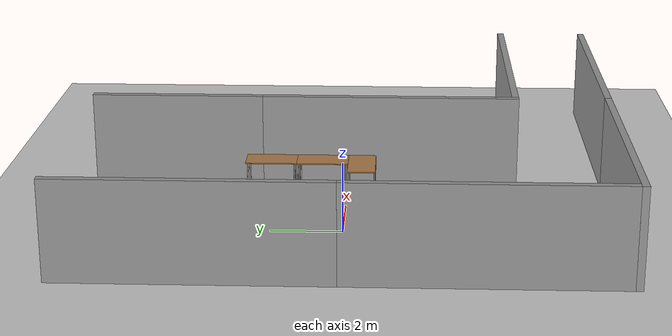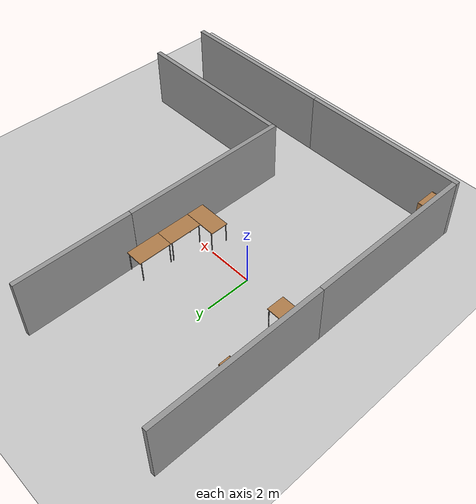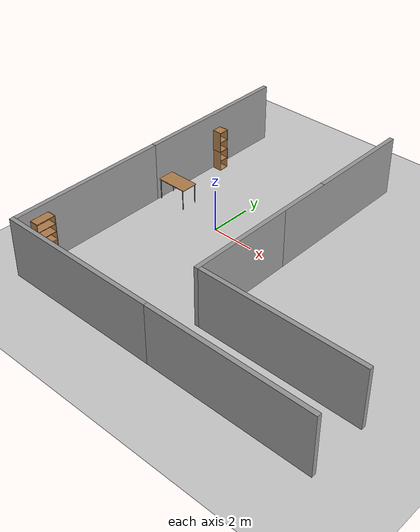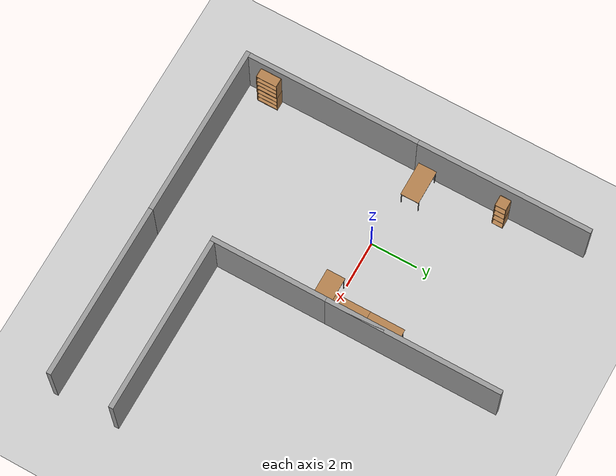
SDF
<sdf version="1.6">
 <world name="default">
  <model name="ground_plane">
   <static>1</static>
   <link name="link">
    <collision name="collision">
     <geometry><plane><normal>0 0 1</normal><size>100 100</size></plane></geometry>
     <surface>
      <contact><collide_bitmask>65535</collide_bitmask></contact>
      <friction><ode><mu>100</mu><mu2>50</mu2></ode></friction>
     </surface>
    </collision>
    <visual name="visual">
     <cast_shadows>0</cast_shadows>
     <geometry><plane><normal>0 0 1</normal><size>100 100</size></plane></geometry>
     <material>
      <script><uri>file://media/materials/scripts/gazebo.material</uri><name>Gazebo/Grey</name></script>
     </material>
    </visual>
   </link>
  </model>
  <model name="grey_wall">
   <static>1</static>
   <link name="link">
    <pose>0 0 1.4 0 -0 0</pose>
    <collision name="collision"><geometry><box><size>7.5 0.2 2.8</size></box></geometry></collision>
    <visual name="visual">
     <cast_shadows>0</cast_shadows>
     <geometry><box><size>7.5 0.2 2.8</size></box></geometry>
     <material>
      <script>
       <uri>model://grey_wall/materials/scripts</uri>
       <uri>model://grey_wall/materials/textures</uri>
       <name>vrc/grey_wall</name>
      </script>
     </material>
    </visual>
   </link>
   <pose>0 -7.6 0 0 -0 0</pose>
  </model>
  <model name="grey_wall_clone">
   <static>1</static>
   <link name="link">
    <pose>0 0 1.4 0 -0 0</pose>
    <collision name="collision"><geometry><box><size>7.5 0.2 2.8</size></box></geometry></collision>
    <visual name="visual">
     <cast_shadows>0</cast_shadows>
     <geometry><box><size>7.5 0.2 2.8</size></box></geometry>
     <material>
      <script>
       <uri>model://grey_wall/materials/scripts</uri>
       <uri>model://grey_wall/materials/textures</uri>
       <name>vrc/grey_wall</name>
      </script>
     </material>
    </visual>
   </link>
   <pose>-3.64848 -3.75 0 0 -0 1.5708</pose>
  </model>
  <model name="grey_wall_clone_0">
   <static>1</static>
   <link name="link">
    <pose>0 0 1.4 0 -0 0</pose>
    <collision name="collision"><geometry><box><size>7.5 0.2 2.8</size></box></geometry></collision>
    <visual name="visual">
     <cast_shadows>0</cast_shadows>
     <geometry><box><size>7.5 0.2 2.8</size></box></geometry>
     <material>
      <script>
       <uri>model://grey_wall/materials/scripts</uri>
       <uri>model://grey_wall/materials/textures</uri>
       <name>vrc/grey_wall</name>
      </script>
     </material>
    </visual>
   </link>
   <pose>-3.65 3.75 0 0 -0 1.5708</pose>
  </model>
  <model name="grey_wall_clone_2">
   <static>1</static>
   <link name="link">
    <pose>0 0 1.4 0 -0 0</pose>
    <collision name="collision"><geometry><box><size>7.5 0.2 2.8</size></box></geometry></collision>
    <visual name="visual">
     <cast_shadows>0</cast_shadows>
     <geometry><box><size>7.5 0.2 2.8</size></box></geometry>
     <material>
      <script>
       <uri>model://grey_wall/materials/scripts</uri>
       <uri>model://grey_wall/materials/textures</uri>
       <name>vrc/grey_wall</name>
      </script>
     </material>
    </visual>
   </link>
   <pose>3.65 -1.25 0 0 -0 1.5708</pose>
  </model>
  <model name="grey_wall_clone_3">
   <static>1</static>
   <link name="link">
    <pose>0 0 1.4 0 -0 0</pose>
    <collision name="collision"><geometry><box><size>7.5 0.2 2.8</size></box></geometry></collision>
    <visual name="visual">
     <cast_shadows>0</cast_shadows>
     <geometry><box><size>7.5 0.2 2.8</size></box></geometry>
     <material>
      <script>
       <uri>model://grey_wall/materials/scripts</uri>
       <uri>model://grey_wall/materials/textures</uri>
       <name>vrc/grey_wall</name>
      </script>
     </material>
    </visual>
   </link>
   <pose>3.65 3.75 0 0 -0 1.5708</pose>
  </model>
  <model name="grey_wall_clone_4">
   <static>1</static>
   <link name="link">
    <pose>0 0 1.4 0 -0 0</pose>
    <collision name="collision"><geometry><box><size>7.5 0.2 2.8</size></box></geometry></collision>
    <visual name="visual">
     <cast_shadows>0</cast_shadows>
     <geometry><box><size>7.5 0.2 2.8</size></box></geometry>
     <material>
      <script>
       <uri>model://grey_wall/materials/scripts</uri>
       <uri>model://grey_wall/materials/textures</uri>
       <name>vrc/grey_wall</name>
      </script>
     </material>
    </visual>
   </link>
   <pose>7.5 -7.6 0 0 -0 0</pose>
  </model>
  <model name="grey_wall_clone_5">
   <static>1</static>
   <link name="link">
    <pose>0 0 1.4 0 -0 0</pose>
    <collision name="collision"><geometry><box><size>7.5 0.2 2.8</size></box></geometry></collision>
    <visual name="visual">
     <cast_shadows>0</cast_shadows>
     <geometry><box><size>7.5 0.2 2.8</size></box></geometry>
     <material>
      <script>
       <uri>model://grey_wall/materials/scripts</uri>
       <uri>model://grey_wall/materials/textures</uri>
       <name>vrc/grey_wall</name>
      </script>
     </material>
    </visual>
   </link>
   <pose>7.5 -4.9 0 0 -0 0</pose>
  </model>
  <model name="table">
   <static>1</static>
   <link name="link">
    <collision name="surface">
     <pose>0 0 1 0 -0 0</pose>
     <geometry><box><size>1.5 0.8 0.03</size></box></geometry>
     <surface><friction><ode><mu>0.6</mu><mu2>0.6</mu2></ode></friction></surface>
    </collision>
    <visual name="visual1">
     <pose>0 0 1 0 -0 0</pose>
     <geometry><box><size>1.5 0.8 0.03</size></box></geometry>
     <material>
      <script><uri>file://media/materials/scripts/gazebo.material</uri><name>Gazebo/Wood</name></script>
     </material>
    </visual>
    <collision name="front_left_leg">
     <pose>0.68 0.38 0.5 0 -0 0</pose>
     <geometry><cylinder><radius>0.02</radius><length>1</length></cylinder></geometry>
    </collision>
    <visual name="front_left_leg">
     <pose>0.68 0.38 0.5 0 -0 0</pose>
     <geometry><cylinder><radius>0.02</radius><length>1</length></cylinder></geometry>
     <material>
      <script><uri>file://media/materials/scripts/gazebo.material</uri><name>Gazebo/Grey</name></script>
     </material>
    </visual>
    <collision name="front_right_leg">
     <pose>0.68 -0.38 0.5 0 -0 0</pose>
     <geometry><cylinder><radius>0.02</radius><length>1</length></cylinder></geometry>
    </collision>
    <visual name="front_right_leg">
     <pose>0.68 -0.38 0.5 0 -0 0</pose>
     <geometry><cylinder><radius>0.02</radius><length>1</length></cylinder></geometry>
     <material>
      <script><uri>file://media/materials/scripts/gazebo.material</uri><name>Gazebo/Grey</name></script>
     </material>
    </visual>
    <collision name="back_right_leg">
     <pose>-0.68 -0.38 0.5 0 -0 0</pose>
     <geometry><cylinder><radius>0.02</radius><length>1</length></cylinder></geometry>
    </collision>
    <visual name="back_right_leg">
     <pose>-0.68 -0.38 0.5 0 -0 0</pose>
     <geometry><cylinder><radius>0.02</radius><length>1</length></cylinder></geometry>
     <material>
      <script><uri>file://media/materials/scripts/gazebo.material</uri><name>Gazebo/Grey</name></script>
     </material>
    </visual>
    <collision name="back_left_leg">
     <pose>-0.68 0.38 0.5 0 -0 0</pose>
     <geometry><cylinder><radius>0.02</radius><length>1</length></cylinder></geometry>
    </collision>
    <visual name="back_left_leg">
     <pose>-0.68 0.38 0.5 0 -0 0</pose>
     <geometry><cylinder><radius>0.02</radius><length>1</length></cylinder></geometry>
     <material>
      <script><uri>file://media/materials/scripts/gazebo.material</uri><name>Gazebo/Grey</name></script>
     </material>
    </visual>
   </link>
   <pose>-2.79402 0.550579 0 0 -0 0</pose>
  </model>
  <model name="table_clone">
   <static>1</static>
   <link name="link">
    <collision name="surface">
     <pose>0 0 1 0 -0 0</pose>
     <geometry><box><size>1.5 0.8 0.03</size></box></geometry>
     <surface><friction><ode><mu>0.6</mu><mu2>0.6</mu2></ode></friction></surface>
    </collision>
    <visual name="visual1">
     <pose>0 0 1 0 -0 0</pose>
     <geometry><box><size>1.5 0.8 0.03</size></box></geometry>
     <material>
      <script><uri>file://media/materials/scripts/gazebo.material</uri><name>Gazebo/Wood</name></script>
     </material>
    </visual>
    <collision name="front_left_leg">
     <pose>0.68 0.38 0.5 0 -0 0</pose>
     <geometry><cylinder><radius>0.02</radius><length>1</length></cylinder></geometry>
    </collision>
    <visual name="front_left_leg">
     <pose>0.68 0.38 0.5 0 -0 0</pose>
     <geometry><cylinder><radius>0.02</radius><length>1</length></cylinder></geometry>
     <material>
      <script><uri>file://media/materials/scripts/gazebo.material</uri><name>Gazebo/Grey</name></script>
     </material>
    </visual>
    <collision name="front_right_leg">
     <pose>0.68 -0.38 0.5 0 -0 0</pose>
     <geometry><cylinder><radius>0.02</radius><length>1</length></cylinder></geometry>
    </collision>
    <visual name="front_right_leg">
     <pose>0.68 -0.38 0.5 0 -0 0</pose>
     <geometry><cylinder><radius>0.02</radius><length>1</length></cylinder></geometry>
     <material>
      <script><uri>file://media/materials/scripts/gazebo.material</uri><name>Gazebo/Grey</name></script>
     </material>
    </visual>
    <collision name="back_right_leg">
     <pose>-0.68 -0.38 0.5 0 -0 0</pose>
     <geometry><cylinder><radius>0.02</radius><length>1</length></cylinder></geometry>
    </collision>
    <visual name="back_right_leg">
     <pose>-0.68 -0.38 0.5 0 -0 0</pose>
     <geometry><cylinder><radius>0.02</radius><length>1</length></cylinder></geometry>
     <material>
      <script><uri>file://media/materials/scripts/gazebo.material</uri><name>Gazebo/Grey</name></script>
     </material>
    </visual>
    <collision name="back_left_leg">
     <pose>-0.68 0.38 0.5 0 -0 0</pose>
     <geometry><cylinder><radius>0.02</radius><length>1</length></cylinder></geometry>
    </collision>
    <visual name="back_left_leg">
     <pose>-0.68 0.38 0.5 0 -0 0</pose>
     <geometry><cylinder><radius>0.02</radius><length>1</length></cylinder></geometry>
     <material>
      <script><uri>file://media/materials/scripts/gazebo.material</uri><name>Gazebo/Grey</name></script>
     </material>
    </visual>
   </link>
   <pose>3.14621 2.2136 0 0 -0 1.5708</pose>
  </model>
  <model name="table_clone_0">
   <static>1</static>
   <link name="link">
    <collision name="surface">
     <pose>0 0 1 0 -0 0</pose>
     <geometry><box><size>1.5 0.8 0.03</size></box></geometry>
     <surface><friction><ode><mu>0.6</mu><mu2>0.6</mu2></ode></friction></surface>
    </collision>
    <visual name="visual1">
     <pose>0 0 1 0 -0 0</pose>
     <geometry><box><size>1.5 0.8 0.03</size></box></geometry>
     <material>
      <script><uri>file://media/materials/scripts/gazebo.material</uri><name>Gazebo/Wood</name></script>
     </material>
    </visual>
    <collision name="front_left_leg">
     <pose>0.68 0.38 0.5 0 -0 0</pose>
     <geometry><cylinder><radius>0.02</radius><length>1</length></cylinder></geometry>
    </collision>
    <visual name="front_left_leg">
     <pose>0.68 0.38 0.5 0 -0 0</pose>
     <geometry><cylinder><radius>0.02</radius><length>1</length></cylinder></geometry>
     <material>
      <script><uri>file://media/materials/scripts/gazebo.material</uri><name>Gazebo/Grey</name></script>
     </material>
    </visual>
    <collision name="front_right_leg">
     <pose>0.68 -0.38 0.5 0 -0 0</pose>
     <geometry><cylinder><radius>0.02</radius><length>1</length></cylinder></geometry>
    </collision>
    <visual name="front_right_leg">
     <pose>0.68 -0.38 0.5 0 -0 0</pose>
     <geometry><cylinder><radius>0.02</radius><length>1</length></cylinder></geometry>
     <material>
      <script><uri>file://media/materials/scripts/gazebo.material</uri><name>Gazebo/Grey</name></script>
     </material>
    </visual>
    <collision name="back_right_leg">
     <pose>-0.68 -0.38 0.5 0 -0 0</pose>
     <geometry><cylinder><radius>0.02</radius><length>1</length></cylinder></geometry>
    </collision>
    <visual name="back_right_leg">
     <pose>-0.68 -0.38 0.5 0 -0 0</pose>
     <geometry><cylinder><radius>0.02</radius><length>1</length></cylinder></geometry>
     <material>
      <script><uri>file://media/materials/scripts/gazebo.material</uri><name>Gazebo/Grey</name></script>
     </material>
    </visual>
    <collision name="back_left_leg">
     <pose>-0.68 0.38 0.5 0 -0 0</pose>
     <geometry><cylinder><radius>0.02</radius><length>1</length></cylinder></geometry>
    </collision>
    <visual name="back_left_leg">
     <pose>-0.68 0.38 0.5 0 -0 0</pose>
     <geometry><cylinder><radius>0.02</radius><length>1</length></cylinder></geometry>
     <material>
      <script><uri>file://media/materials/scripts/gazebo.material</uri><name>Gazebo/Grey</name></script>
     </material>
    </visual>
   </link>
   <pose>2.80219 -0.438153 0 0 -0 0</pose>
  </model>
  <model name="table_clone_1">
   <static>1</static>
   <link name="link">
    <collision name="surface">
     <pose>0 0 1 0 -0 0</pose>
     <geometry><box><size>1.5 0.8 0.03</size></box></geometry>
     <surface><friction><ode><mu>0.6</mu><mu2>0.6</mu2></ode></friction></surface>
    </collision>
    <visual name="visual1">
     <pose>0 0 1 0 -0 0</pose>
     <geometry><box><size>1.5 0.8 0.03</size></box></geometry>
     <material>
      <script><uri>file://media/materials/scripts/gazebo.material</uri><name>Gazebo/Wood</name></script>
     </material>
    </visual>
    <collision name="front_left_leg">
     <pose>0.68 0.38 0.5 0 -0 0</pose>
     <geometry><cylinder><radius>0.02</radius><length>1</length></cylinder></geometry>
    </collision>
    <visual name="front_left_leg">
     <pose>0.68 0.38 0.5 0 -0 0</pose>
     <geometry><cylinder><radius>0.02</radius><length>1</length></cylinder></geometry>
     <material>
      <script><uri>file://media/materials/scripts/gazebo.material</uri><name>Gazebo/Grey</name></script>
     </material>
    </visual>
    <collision name="front_right_leg">
     <pose>0.68 -0.38 0.5 0 -0 0</pose>
     <geometry><cylinder><radius>0.02</radius><length>1</length></cylinder></geometry>
    </collision>
    <visual name="front_right_leg">
     <pose>0.68 -0.38 0.5 0 -0 0</pose>
     <geometry><cylinder><radius>0.02</radius><length>1</length></cylinder></geometry>
     <material>
      <script><uri>file://media/materials/scripts/gazebo.material</uri><name>Gazebo/Grey</name></script>
     </material>
    </visual>
    <collision name="back_right_leg">
     <pose>-0.68 -0.38 0.5 0 -0 0</pose>
     <geometry><cylinder><radius>0.02</radius><length>1</length></cylinder></geometry>
    </collision>
    <visual name="back_right_leg">
     <pose>-0.68 -0.38 0.5 0 -0 0</pose>
     <geometry><cylinder><radius>0.02</radius><length>1</length></cylinder></geometry>
     <material>
      <script><uri>file://media/materials/scripts/gazebo.material</uri><name>Gazebo/Grey</name></script>
     </material>
    </visual>
    <collision name="back_left_leg">
     <pose>-0.68 0.38 0.5 0 -0 0</pose>
     <geometry><cylinder><radius>0.02</radius><length>1</length></cylinder></geometry>
    </collision>
    <visual name="back_left_leg">
     <pose>-0.68 0.38 0.5 0 -0 0</pose>
     <geometry><cylinder><radius>0.02</radius><length>1</length></cylinder></geometry>
     <material>
      <script><uri>file://media/materials/scripts/gazebo.material</uri><name>Gazebo/Grey</name></script>
     </material>
    </visual>
   </link>
   <pose>3.14722 0.714704 0 0 -0 1.5708</pose>
  </model>
  <model name="bookshelf">
   <static>1</static>
   <link name="link">
    <inertial><mass>1</mass></inertial>
    <collision name="back">
     <pose>0 0.005 0.6 0 -0 0</pose>
     <geometry><box><size>0.9 0.01 1.2</size></box></geometry>
    </collision>
    <visual name="visual1">
     <pose>0 0.005 0.6 0 -0 0</pose>
     <geometry><box><size>0.9 0.01 1.2</size></box></geometry>
     <material>
      <script><uri>file://media/materials/scripts/gazebo.material</uri><name>Gazebo/Wood</name></script>
     </material>
    </visual>
    <collision name="left_side">
     <pose>0.45 -0.195 0.6 0 -0 0</pose>
     <geometry><box><size>0.02 0.4 1.2</size></box></geometry>
    </collision>
    <visual name="visual2">
     <pose>0.45 -0.195 0.6 0 -0 0</pose>
     <geometry><box><size>0.02 0.4 1.2</size></box></geometry>
     <material>
      <script><uri>file://media/materials/scripts/gazebo.material</uri><name>Gazebo/Wood</name></script>
     </material>
    </visual>
    <collision name="right_side">
     <pose>-0.45 -0.195 0.6 0 -0 0</pose>
     <geometry><box><size>0.02 0.4 1.2</size></box></geometry>
    </collision>
    <visual name="visual3">
     <pose>-0.45 -0.195 0.6 0 -0 0</pose>
     <geometry><box><size>0.02 0.4 1.2</size></box></geometry>
     <material>
      <script><uri>file://media/materials/scripts/gazebo.material</uri><name>Gazebo/Wood</name></script>
     </material>
    </visual>
    <collision name="bottom">
     <pose>0 -0.195 0.03 0 -0 0</pose>
     <geometry><box><size>0.88 0.4 0.06</size></box></geometry>
    </collision>
    <visual name="visual4">
     <pose>0 -0.195 0.03 0 -0 0</pose>
     <geometry><box><size>0.88 0.4 0.06</size></box></geometry>
     <material>
      <script><uri>file://media/materials/scripts/gazebo.material</uri><name>Gazebo/Wood</name></script>
     </material>
    </visual>
    <collision name="top">
     <pose>0 -0.195 1.19 0 -0 0</pose>
     <geometry><box><size>0.88 0.4 0.02</size></box></geometry>
    </collision>
    <visual name="visual5">
     <pose>0 -0.195 1.19 0 -0 0</pose>
     <geometry><box><size>0.88 0.4 0.02</size></box></geometry>
     <material>
      <script><uri>file://media/materials/scripts/gazebo.material</uri><name>Gazebo/Wood</name></script>
     </material>
    </visual>
    <collision name="low_shelf">
     <pose>0 -0.195 0.43 0 -0 0</pose>
     <geometry><box><size>0.88 0.4 0.02</size></box></geometry>
    </collision>
    <visual name="visual6">
     <pose>0 -0.195 0.43 0 -0 0</pose>
     <geometry><box><size>0.88 0.4 0.02</size></box></geometry>
     <material>
      <script><uri>file://media/materials/scripts/gazebo.material</uri><name>Gazebo/Wood</name></script>
     </material>
    </visual>
    <collision name="high_shelf">
     <pose>0 -0.195 0.8 0 -0 0</pose>
     <geometry><box><size>0.88 0.4 0.02</size></box></geometry>
    </collision>
    <visual name="visual7">
     <pose>0 -0.195 0.8 0 -0 0</pose>
     <geometry><box><size>0.88 0.4 0.02</size></box></geometry>
     <material>
      <script><uri>file://media/materials/scripts/gazebo.material</uri><name>Gazebo/Wood</name></script>
     </material>
    </visual>
   </link>
   <pose>-3.52342 -6.46494 0 0 -0 1.5708</pose>
  </model>
  <model name="bookshelf_0">
   <static>1</static>
   <link name="link">
    <inertial><mass>1</mass></inertial>
    <collision name="back">
     <pose>0 0.005 0.6 0 -0 0</pose>
     <geometry><box><size>0.9 0.01 1.2</size></box></geometry>
    </collision>
    <visual name="visual1">
     <pose>0 0.005 0.6 0 -0 0</pose>
     <geometry><box><size>0.9 0.01 1.2</size></box></geometry>
     <material>
      <script><uri>file://media/materials/scripts/gazebo.material</uri><name>Gazebo/Wood</name></script>
     </material>
    </visual>
    <collision name="left_side">
     <pose>0.45 -0.195 0.6 0 -0 0</pose>
     <geometry><box><size>0.02 0.4 1.2</size></box></geometry>
    </collision>
    <visual name="visual2">
     <pose>0.45 -0.195 0.6 0 -0 0</pose>
     <geometry><box><size>0.02 0.4 1.2</size></box></geometry>
     <material>
      <script><uri>file://media/materials/scripts/gazebo.material</uri><name>Gazebo/Wood</name></script>
     </material>
    </visual>
    <collision name="right_side">
     <pose>-0.45 -0.195 0.6 0 -0 0</pose>
     <geometry><box><size>0.02 0.4 1.2</size></box></geometry>
    </collision>
    <visual name="visual3">
     <pose>-0.45 -0.195 0.6 0 -0 0</pose>
     <geometry><box><size>0.02 0.4 1.2</size></box></geometry>
     <material>
      <script><uri>file://media/materials/scripts/gazebo.material</uri><name>Gazebo/Wood</name></script>
     </material>
    </visual>
    <collision name="bottom">
     <pose>0 -0.195 0.03 0 -0 0</pose>
     <geometry><box><size>0.88 0.4 0.06</size></box></geometry>
    </collision>
    <visual name="visual4">
     <pose>0 -0.195 0.03 0 -0 0</pose>
     <geometry><box><size>0.88 0.4 0.06</size></box></geometry>
     <material>
      <script><uri>file://media/materials/scripts/gazebo.material</uri><name>Gazebo/Wood</name></script>
     </material>
    </visual>
    <collision name="top">
     <pose>0 -0.195 1.19 0 -0 0</pose>
     <geometry><box><size>0.88 0.4 0.02</size></box></geometry>
    </collision>
    <visual name="visual5">
     <pose>0 -0.195 1.19 0 -0 0</pose>
     <geometry><box><size>0.88 0.4 0.02</size></box></geometry>
     <material>
      <script><uri>file://media/materials/scripts/gazebo.material</uri><name>Gazebo/Wood</name></script>
     </material>
    </visual>
    <collision name="low_shelf">
     <pose>0 -0.195 0.43 0 -0 0</pose>
     <geometry><box><size>0.88 0.4 0.02</size></box></geometry>
    </collision>
    <visual name="visual6">
     <pose>0 -0.195 0.43 0 -0 0</pose>
     <geometry><box><size>0.88 0.4 0.02</size></box></geometry>
     <material>
      <script><uri>file://media/materials/scripts/gazebo.material</uri><name>Gazebo/Wood</name></script>
     </material>
    </visual>
    <collision name="high_shelf">
     <pose>0 -0.195 0.8 0 -0 0</pose>
     <geometry><box><size>0.88 0.4 0.02</size></box></geometry>
    </collision>
    <visual name="visual7">
     <pose>0 -0.195 0.8 0 -0 0</pose>
     <geometry><box><size>0.88 0.4 0.02</size></box></geometry>
     <material>
      <script><uri>file://media/materials/scripts/gazebo.material</uri><name>Gazebo/Wood</name></script>
     </material>
    </visual>
   </link>
   <pose>-3.51673 -6.46201 1.17991 0 -0 1.5708</pose>
  </model>
  <model name="cabinet">
   <static>1</static>
   <link name="cabinet_bottom_plate">
    <inertial>
     <pose>0 0 -1 0 -0 0</pose>
     <inertia><ixx>2.05</ixx><ixy>0</ixy><ixz>0</ixz><iyy>2.05</iyy><iyz>0</iyz><izz>2.05</izz></inertia>
     <mass>25</mass>
    </inertial>
    <collision name="cabinet_bottom_plate_geom">
     <pose>0 0 0.01 0 -0 0</pose>
     <geometry><box><size>0.45 0.45 0.02</size></box></geometry>
    </collision>
    <visual name="cabinet_bottom_plate_geom_visual">
     <pose>0 0 0.01 0 -0 0</pose>
     <geometry><box><size>0.45 0.45 0.02</size></box></geometry>
     <material>
      <script><uri>file://media/materials/scripts/gazebo.material</uri><name>Gazebo/Wood</name></script>
     </material>
    </visual>
    <collision name="cabinet_bottom_plate_geom_cabinet_back_plate">
     <pose>0.235 0 0.51 0 -0 0</pose>
     <geometry><box><size>0.02 0.45 1.02</size></box></geometry>
    </collision>
    <visual name="cabinet_bottom_plate_geom_cabinet_back_plate_visual">
     <pose>0.235 0 0.51 0 -0 0</pose>
     <geometry><box><size>0.02 0.45 1.02</size></box></geometry>
     <material>
      <script><uri>file://media/materials/scripts/gazebo.material</uri><name>Gazebo/Wood</name></script>
     </material>
    </visual>
    <collision name="cabinet_bottom_plate_geom_cabinet_left_plate">
     <pose>0 0.235 0.51 0 -0 0</pose>
     <geometry><box><size>0.45 0.02 1.02</size></box></geometry>
    </collision>
    <visual name="cabinet_bottom_plate_geom_cabinet_left_plate_visual">
     <pose>0 0.235 0.51 0 -0 0</pose>
     <geometry><box><size>0.45 0.02 1.02</size></box></geometry>
     <material>
      <script><uri>file://media/materials/scripts/gazebo.material</uri><name>Gazebo/Wood</name></script>
     </material>
    </visual>
    <collision name="cabinet_bottom_plate_geom_cabinet_middle_plate">
     <pose>0 0 0.51 0 -0 0</pose>
     <geometry><box><size>0.45 0.45 0.02</size></box></geometry>
    </collision>
    <visual name="cabinet_bottom_plate_geom_cabinet_middle_plate_visual">
     <pose>0 0 0.51 0 -0 0</pose>
     <geometry><box><size>0.45 0.45 0.02</size></box></geometry>
     <material>
      <script><uri>file://media/materials/scripts/gazebo.material</uri><name>Gazebo/Wood</name></script>
     </material>
    </visual>
    <collision name="cabinet_bottom_plate_geom_cabinet_right_plate">
     <pose>0 -0.235 0.51 0 -0 0</pose>
     <geometry><box><size>0.45 0.02 1.02</size></box></geometry>
    </collision>
    <visual name="cabinet_bottom_plate_geom_cabinet_right_plate_visual">
     <pose>0 -0.235 0.51 0 -0 0</pose>
     <geometry><box><size>0.45 0.02 1.02</size></box></geometry>
     <material>
      <script><uri>file://media/materials/scripts/gazebo.material</uri><name>Gazebo/Wood</name></script>
     </material>
    </visual>
    <collision name="cabinet_bottom_plate_geom_cabinet_top_plate">
     <pose>0 0 1.01 0 -0 0</pose>
     <geometry><box><size>0.45 0.45 0.02</size></box></geometry>
    </collision>
    <visual name="cabinet_bottom_plate_geom_cabinet_top_plate_visual">
     <pose>0 0 1.01 0 -0 0</pose>
     <geometry><box><size>0.45 0.45 0.02</size></box></geometry>
     <material>
      <script><uri>file://media/materials/scripts/gazebo.material</uri><name>Gazebo/Wood</name></script>
     </material>
    </visual>
   </link>
   <pose>-3.30515 3.93714 0 0 -0 3.14159</pose>
  </model>
  <model name="cabinet_clone">
   <static>1</static>
   <link name="cabinet_bottom_plate">
    <inertial>
     <pose>0 0 -1 0 -0 0</pose>
     <inertia><ixx>2.05</ixx><ixy>0</ixy><ixz>0</ixz><iyy>2.05</iyy><iyz>0</iyz><izz>2.05</izz></inertia>
     <mass>25</mass>
    </inertial>
    <collision name="cabinet_bottom_plate_geom">
     <pose>0 0 0.01 0 -0 0</pose>
     <geometry><box><size>0.45 0.45 0.02</size></box></geometry>
    </collision>
    <visual name="cabinet_bottom_plate_geom_visual">
     <pose>0 0 0.01 0 -0 0</pose>
     <geometry><box><size>0.45 0.45 0.02</size></box></geometry>
     <material>
      <script><uri>file://media/materials/scripts/gazebo.material</uri><name>Gazebo/Wood</name></script>
     </material>
    </visual>
    <collision name="cabinet_bottom_plate_geom_cabinet_back_plate">
     <pose>0.235 0 0.51 0 -0 0</pose>
     <geometry><box><size>0.02 0.45 1.02</size></box></geometry>
    </collision>
    <visual name="cabinet_bottom_plate_geom_cabinet_back_plate_visual">
     <pose>0.235 0 0.51 0 -0 0</pose>
     <geometry><box><size>0.02 0.45 1.02</size></box></geometry>
     <material>
      <script><uri>file://media/materials/scripts/gazebo.material</uri><name>Gazebo/Wood</name></script>
     </material>
    </visual>
    <collision name="cabinet_bottom_plate_geom_cabinet_left_plate">
     <pose>0 0.235 0.51 0 -0 0</pose>
     <geometry><box><size>0.45 0.02 1.02</size></box></geometry>
    </collision>
    <visual name="cabinet_bottom_plate_geom_cabinet_left_plate_visual">
     <pose>0 0.235 0.51 0 -0 0</pose>
     <geometry><box><size>0.45 0.02 1.02</size></box></geometry>
     <material>
      <script><uri>file://media/materials/scripts/gazebo.material</uri><name>Gazebo/Wood</name></script>
     </material>
    </visual>
    <collision name="cabinet_bottom_plate_geom_cabinet_middle_plate">
     <pose>0 0 0.51 0 -0 0</pose>
     <geometry><box><size>0.45 0.45 0.02</size></box></geometry>
    </collision>
    <visual name="cabinet_bottom_plate_geom_cabinet_middle_plate_visual">
     <pose>0 0 0.51 0 -0 0</pose>
     <geometry><box><size>0.45 0.45 0.02</size></box></geometry>
     <material>
      <script><uri>file://media/materials/scripts/gazebo.material</uri><name>Gazebo/Wood</name></script>
     </material>
    </visual>
    <collision name="cabinet_bottom_plate_geom_cabinet_right_plate">
     <pose>0 -0.235 0.51 0 -0 0</pose>
     <geometry><box><size>0.45 0.02 1.02</size></box></geometry>
    </collision>
    <visual name="cabinet_bottom_plate_geom_cabinet_right_plate_visual">
     <pose>0 -0.235 0.51 0 -0 0</pose>
     <geometry><box><size>0.45 0.02 1.02</size></box></geometry>
     <material>
      <script><uri>file://media/materials/scripts/gazebo.material</uri><name>Gazebo/Wood</name></script>
     </material>
    </visual>
    <collision name="cabinet_bottom_plate_geom_cabinet_top_plate">
     <pose>0 0 1.01 0 -0 0</pose>
     <geometry><box><size>0.45 0.45 0.02</size></box></geometry>
    </collision>
    <visual name="cabinet_bottom_plate_geom_cabinet_top_plate_visual">
     <pose>0 0 1.01 0 -0 0</pose>
     <geometry><box><size>0.45 0.45 0.02</size></box></geometry>
     <material>
      <script><uri>file://media/materials/scripts/gazebo.material</uri><name>Gazebo/Wood</name></script>
     </material>
    </visual>
   </link>
   <pose>-3.31095 3.93042 0.987486 0 -0 3.14159</pose>
  </model>
 </world>
</sdf>
